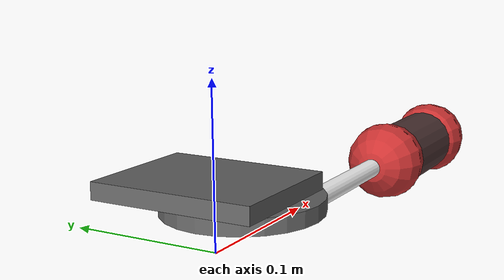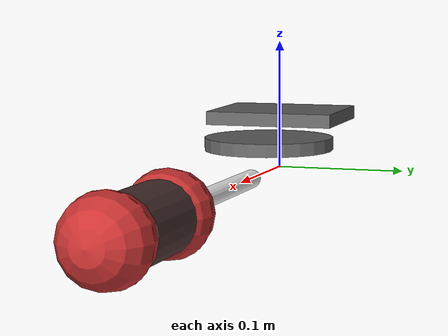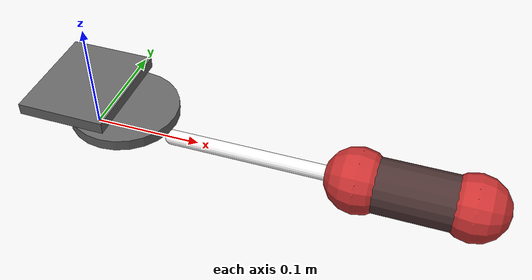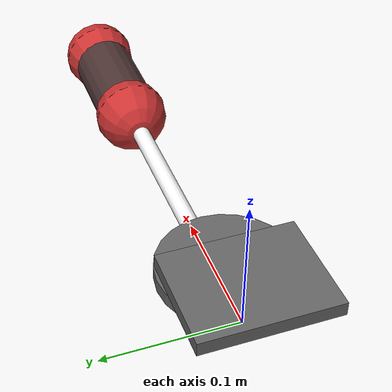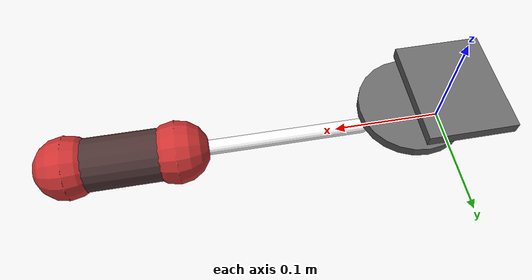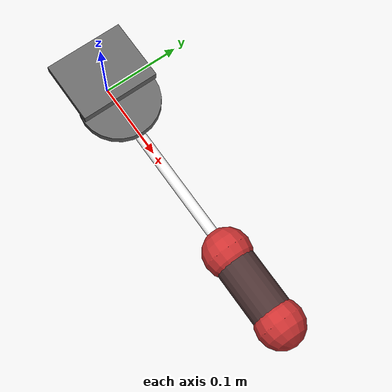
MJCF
<?xml version="1.0" encoding="utf-8"?>
<mujoco model="spatula">
  <visual>
      <quality shadowsize="4048"/>
  </visual>

  <worldbody>
    <body>
      <body name="object" pos="0.3 0 0">
        <geom name="s_handle" size="0.025 0.05" quat="0.707388 0 0.706825 0" type="capsule" condim="4" rgba="0.3 0.2 0.2 1" group="0" mass="0.05"/>
        <geom name="s_handleB" size="0.030 0.0005" pos=".05 0 0" quat="0.707388 0 0.706825 0" type="capsule" condim="4" rgba="0.8 0.2 0.2 1" group="0" mass="0.05"/>
        <geom name="s_handleT" size="0.030 0.0005" pos="-.05 0 0" quat="0.707388 0 0.706825 0" type="capsule" condim="4" rgba="0.8 0.2 0.2 1" group="0" mass="0.05"/>

        <geom name="s_neck" size="0.007 0.085" pos="-0.14 0 0" quat="0.707388 0 0.706825 0" type="capsule" condim="4" rgba="1 1 1 1"  group="0" mass="0.05"/>
        <geom name="s_head" size="0.05 0.005" pos="-0.27 0 .022" type="cylinder" condim="4" rgba="0.4 0.4 0.4 1" euler="0 .5 0" group="0" mass="0.05"/>
        <geom name="s_blade" size="0.04 0.05 0.0052" pos="-0.305 0 .041" type="box" condim="4" rgba="0.4 0.4 0.4 1" euler="0 .5 0" group="0" mass="0.05"/>
        <site name="s_tool" pos="-0.345 0 0.06" size="0.01" group="4" rgba="0.4 0.8 0.4 1" />
      </body>
    </body>
  </worldbody>
</mujoco>
